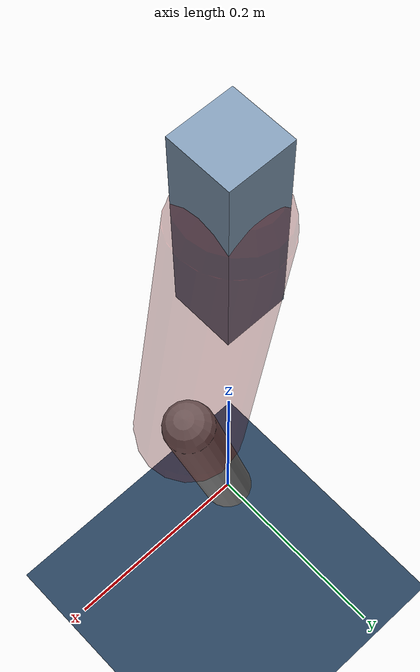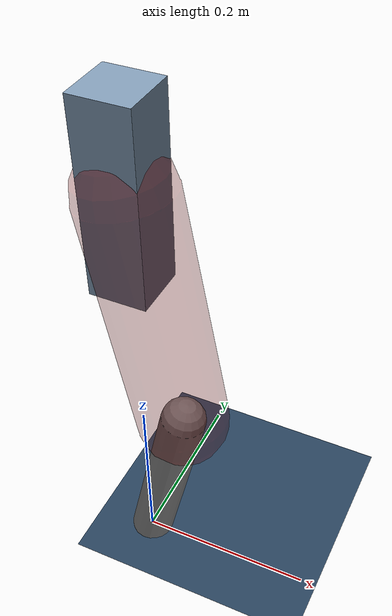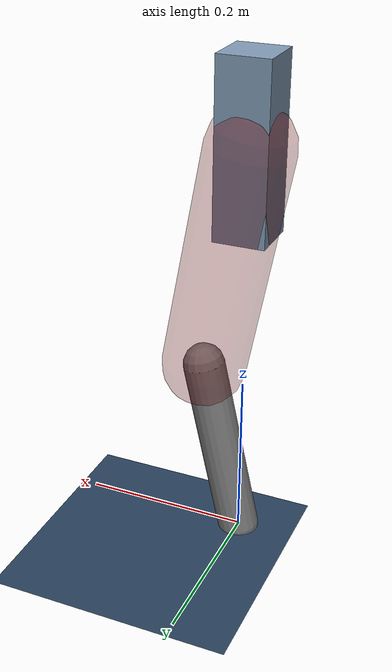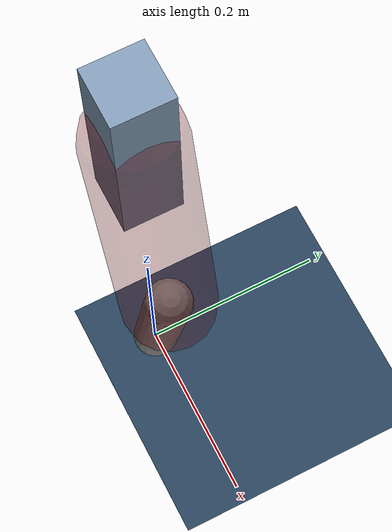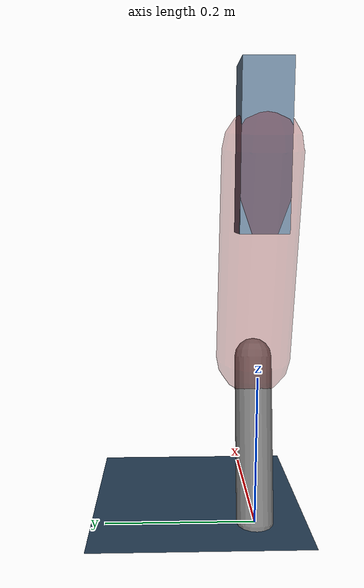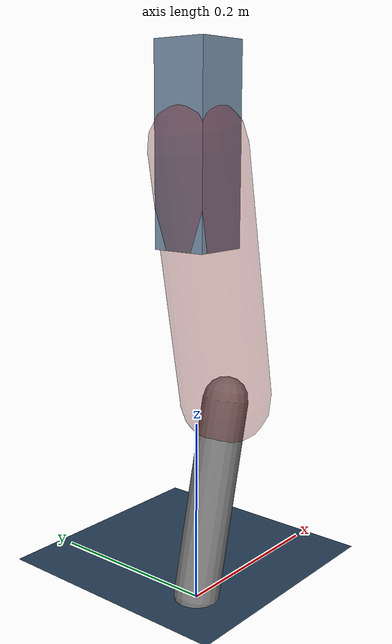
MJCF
<mujoco model="Hopper2D">
	<compiler inertiafromgeom="true" angle="radian" />
	<option timestep="0.001" integrator="implicit" cone="elliptic" solver="Newton" tolerance="1e-10" />

	<default>
		<geom contype="1" conaffinity="1" condim="3" friction="2 0.005 0.0001" solref="0.005 1" />
		<joint limited="true" damping="0.1" />
	</default>

	<asset>
		<texture name="skybox" type="skybox" builtin="gradient" rgb1=".4 .6 .8" rgb2="0 0 0" width="800" height="800" />
		<texture name="grid" type="2d" builtin="checker" rgb1=".1 .2 .3" rgb2=".2 .3 .4" width="300" height="300" mark="edge" markrgb=".2 .3 .4" />
		<material name="ground" texture="grid" texrepeat="1 1" texuniform="true" reflectance="0.1" />
		<material name="leg" rgba="0.5 0.6 0.7 1" />
	</asset>

	<worldbody>

		<geom name="floor" type="plane" size="5 5 0.25" material="ground" />

		<light directional="false" diffuse="0.8 0.8 0.8" specular="0.3 0.3 0.3" pos="0 0 2" dir="0 0 -1" />
		<light mode="targetbodycom" target="base" directional="false" diffuse="0.8 0.8 0.8" specular="0.3 0.3 0.3" pos="0 0 2" dir="0 0 -1" />

		<camera name="fixed" pos="0 -2 1" xyaxes="1 0 0 0 0 1" />
		<camera name="tracking" mode="trackcom" pos="0 -3 1" />

		<body name="root" pos="0 0 0.485251008146094">
			<joint name="slide_x" type="slide" axis="1 0 0" range="-100 100" />
			<joint name="slide_z" type="slide" axis="0 0 1" range="0 10" />

			<body name="base" pos="0 0 0">
				<geom name="torso" type="box" size="0.03 0.03 0.1" mass="1.8780000000000001" material="leg" />

				<body name="link1" pos="0 0 0" euler="0 1.389501215897756 0">
					<joint type="hinge" axis="0 -1 0" pos="0 0 0" name="hinge1" limited="true" range="-3.14 3.14" stiffness="0" damping="0.1" />
					<geom name="thigh" type="capsule" fromto="0 0 0 0.27307809852076514 0 0" size="0.05" rgba="0.5 0 0 0.3" mass="0.9168030561539893" />

					<body name="link2" pos="0.27307809852076514 0 0" euler="0 0.4047659951708363 0">
						<joint type="hinge" axis="0 -1 0" pos="0 0 0" name="hinge2" limited="true" range="-3.14 3.14" stiffness="0" damping="0.1" />
						<geom name="shank" type="capsule" fromto="0 0 0 0.22217290962532887 0 0" size="0.025" mass="0.419455618662796" />

					</body>
				</body>
			</body>
		</body>
	</worldbody>

	<actuator>
		<motor name="torque1" joint="hinge1" ctrlrange="-62.530747037419374 62.530747037419374" ctrllimited="true" gear="1" />
		<motor name="torque2" joint="hinge2" ctrlrange="-64.60895260486284 64.60895260486284" ctrllimited="true" gear="1" />
	</actuator>
</mujoco>
